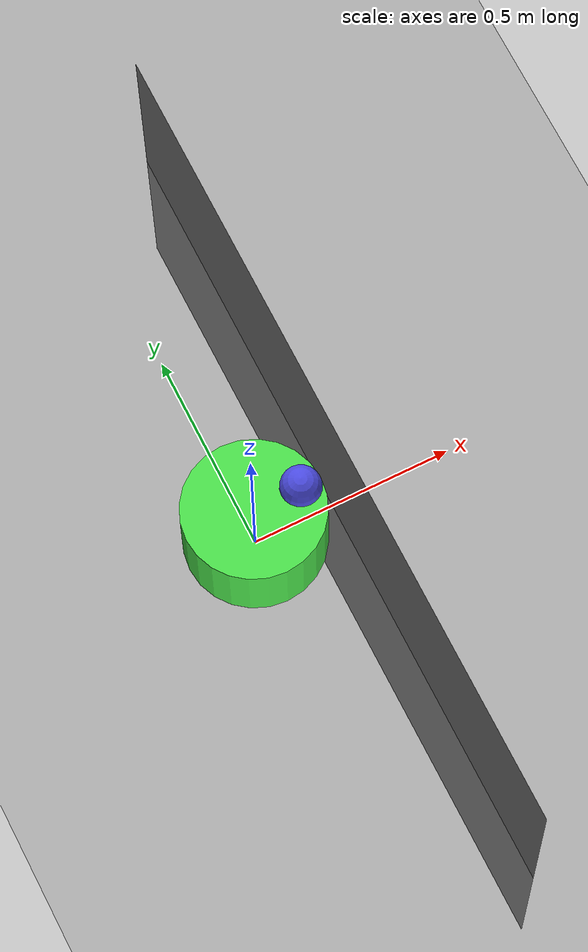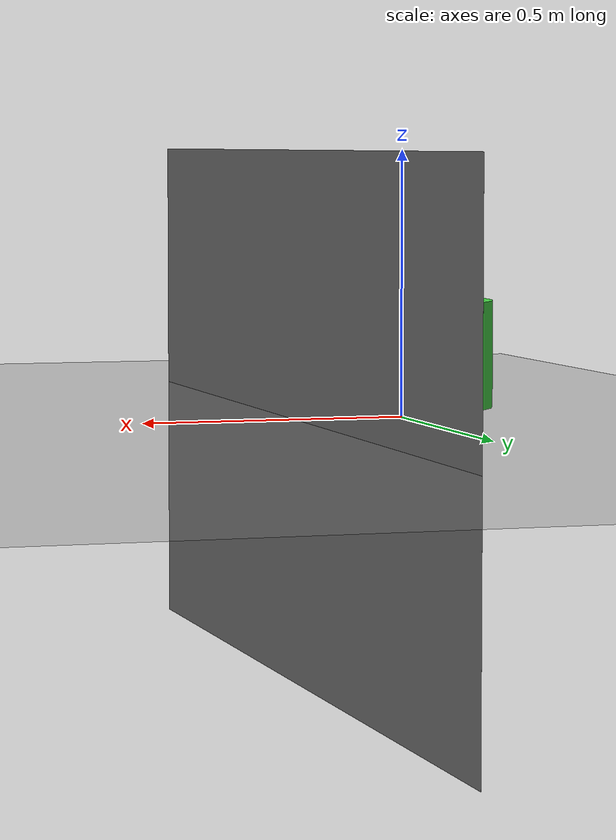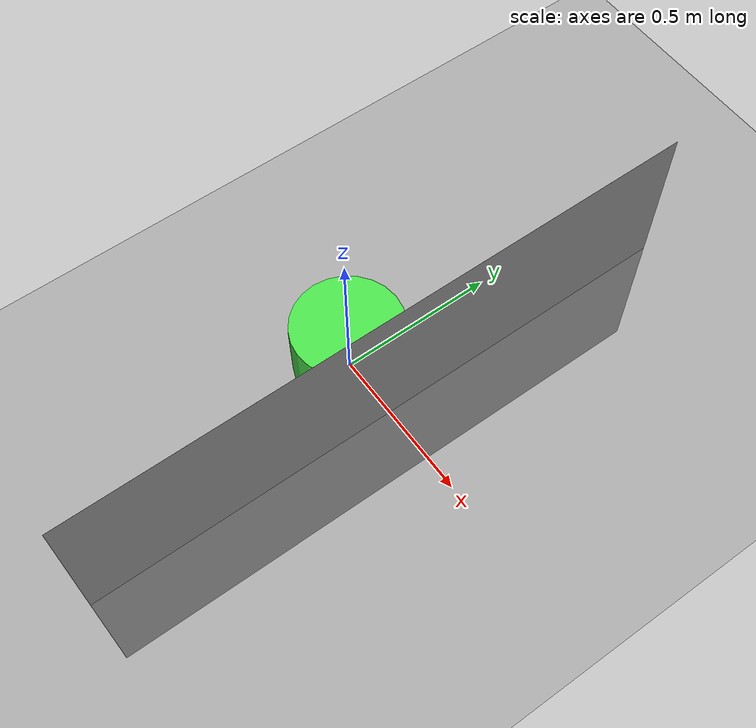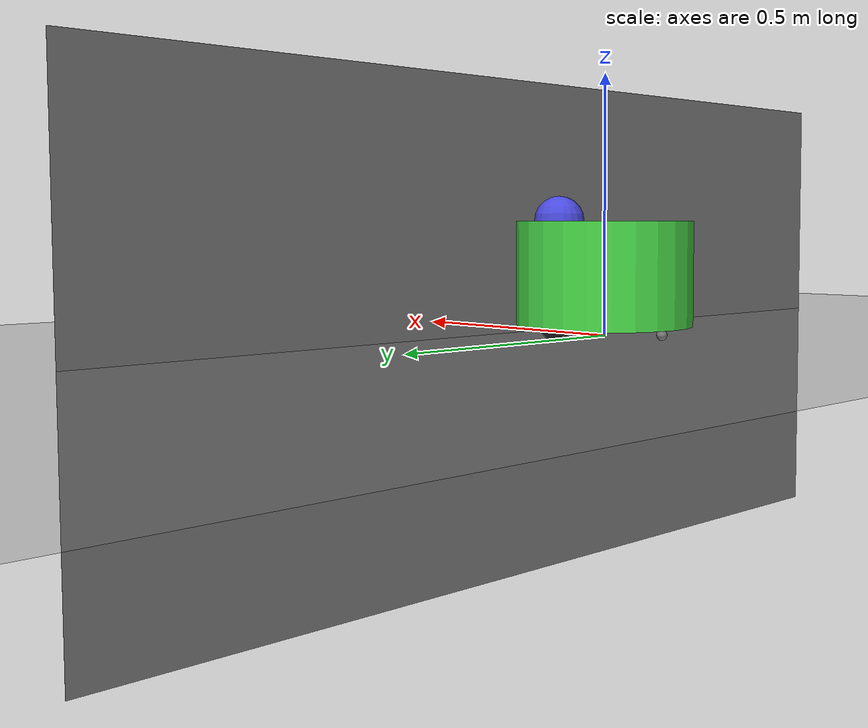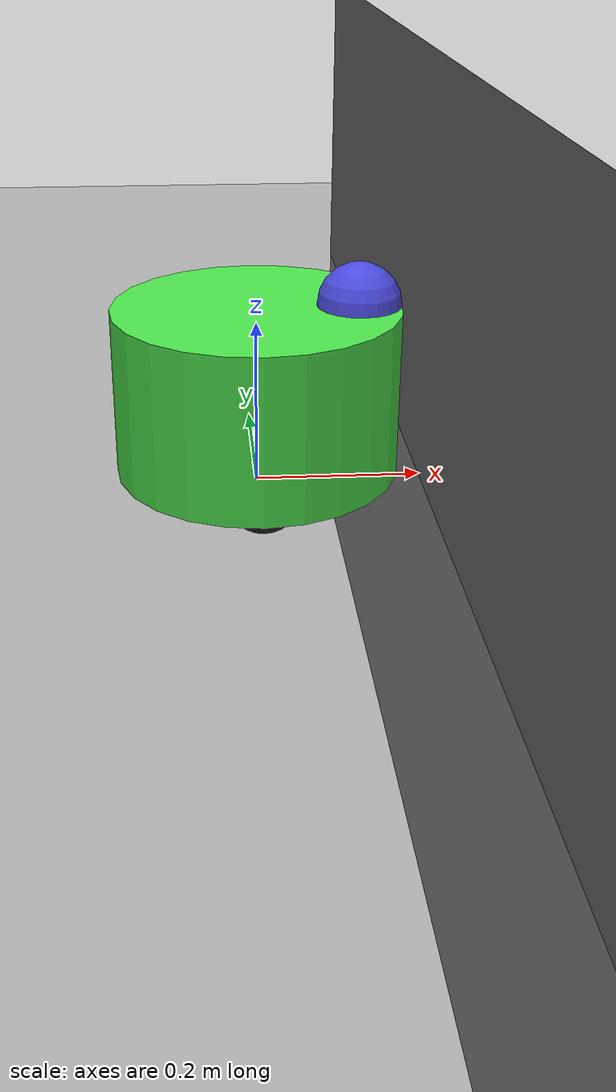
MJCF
<mujoco>
   <visual>
      <global offwidth="1200" offheight="900" />
   </visual>

   <worldbody>
      <light name="uplight" diffuse="1 1 1" pos="0 0 10" dir="0 0 -1" />
      <geom pos="0 0 0" euler="0 0 0" type="plane" size="10 10 0.01" rgba="0.5 0.5 0.5 1" contype="2" />
   <body name="robot" pos="0 0 0" euler="0 0 0">
    <!-- 外壳半径17cm，轮半径4cm，轮间距28cm -->
    <freejoint name="robot"></freejoint>
    <site name="front-flag" rgba="0.3 0.3 0.9 1" pos="0.12 0 0.22" type="sphere" size="0.05"></site>

    <body name="front-wheel" pos="0.14 0  0.01">
        <joint type="ball" pos="0 0 0"></joint>
        <geom contype="2" conaffinity="2" type="sphere" size="0.01"></geom>
    </body>

    <body name="back-wheel" pos="-0.14 0  0.01">
        <joint type="ball" pos="0 0 0"></joint>
        <geom contype="2" conaffinity="2" type="sphere" size="0.01"></geom>
    </body>

    <body name="left-wheel" pos="0 0.14 0.04" euler="90 0 0">
        <joint damping="0.3" name="left-wheel" type="hinge" pos="0 0 0" axis="0 0 -1"></joint>
        <geom contype="2" conaffinity="2" rgba="0.1 0.1 0.1 1" type="cylinder" size="0.04 0.005"></geom>
    </body>

    <body name="right-wheel" pos="0 -0.14 0.04" euler="-90 0  0">
        <joint damping="0.3" name="right-wheel" type="hinge" pos="0 0 0" axis="0 0 1"></joint>
        <geom contype="2" conaffinity="2" rgba="0.1 0.1 0.1 1" type="cylinder" size="0.04 0.005"></geom>
    </body>
    <body name="shell">
      <geom type="cylinder" rgba="0.3 0.9 0.3 1" pos="0 0 0.12" size="0.17 0.1"></geom>
    </body>
</body>

      <body pos="0.2 0 0">
         <geom type="box" size="0.00001 1 0.5" ></geom>
      </body>

   </worldbody>
   <actuator>
      <velocity name="left-velocity-servo" joint="left-wheel" kv="0.05" />
      <velocity name="right-velocity-servo" joint="right-wheel" kv="0.05" />
   </actuator>
</mujoco>
